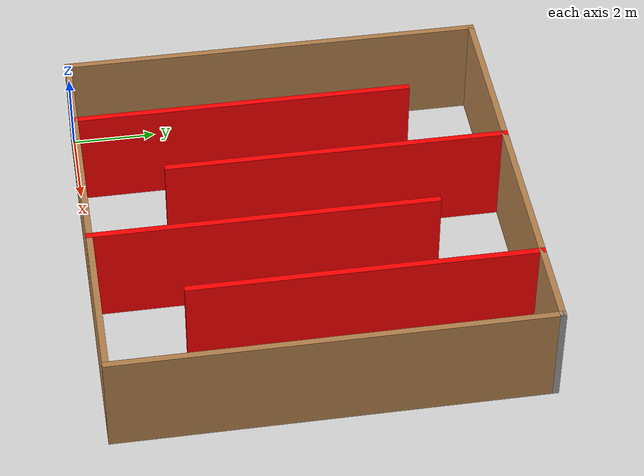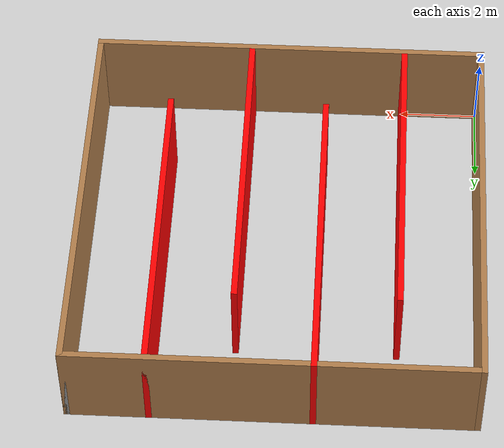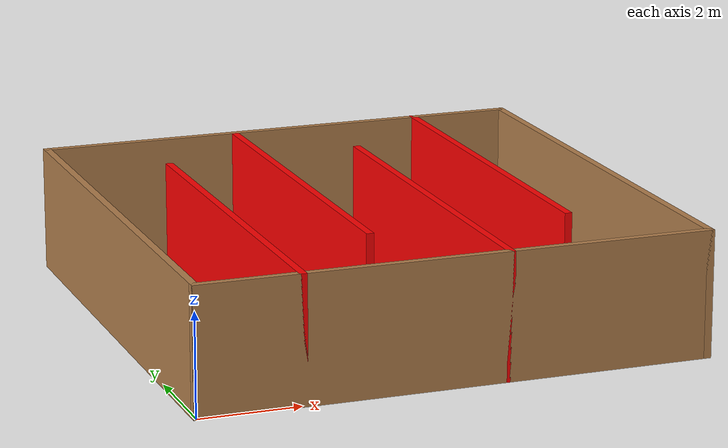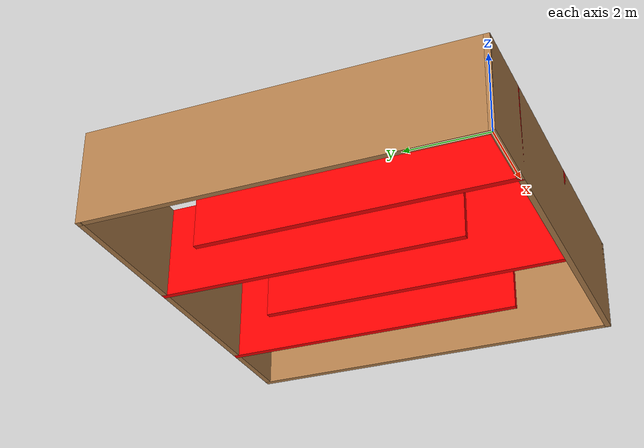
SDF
<?xml version='1.0'?>
<sdf version='1.6'>
  <model name='FlyField'>
    <pose frame=''>5 5 0 0 -0 0</pose>
    <link name='Wall_0'>
      <collision name='Wall_0_Collision'>
        <geometry>
          <box>
            <size>10.15 0.15 2.5</size>
          </box>
        </geometry>
        <pose frame=''>0 0 1.25 0 -0 0</pose>
      </collision>
      <visual name='Wall_0_Visual'>
        <pose frame=''>0 0 1.25 0 -0 0</pose>
        <geometry>
          <box>
            <size>10.15 0.15 2.5</size>
          </box>
        </geometry>
        <material>
          <script>
            <uri>file://media/materials/scripts/gazebo.material</uri>
            <name>Gazebo/Wood</name>
          </script>
          <ambient>0.996078 0.47451 0.0196078 1</ambient>
        </material>
        <meta>
          <layer>0</layer>
        </meta>
      </visual>
      <pose frame=''>0 -5 0 0 -0 0</pose>
    </link>
    <link name='Wall_1'>
      <collision name='Wall_1_Collision'>
        <geometry>
          <box>
            <size>10.15 0.15 2.5</size>
          </box>
        </geometry>
        <pose frame=''>0 0 1.25 0 -0 0</pose>
      </collision>
      <visual name='Wall_1_Visual'>
        <pose frame=''>0 0 1.25 0 -0 0</pose>
        <geometry>
          <box>
            <size>10.15 0.15 2.5</size>
          </box>
        </geometry>
        <material>
          <script>
            <uri>file://media/materials/scripts/gazebo.material</uri>
            <name>Gazebo/Wood</name>
          </script>
          <ambient>0.996078 0.47451 0.0196078 1</ambient>
        </material>
        <meta>
          <layer>0</layer>
        </meta>
      </visual>
      <pose frame=''>5 0 0 0 -0 1.5708</pose>
    </link>
    <link name='Wall_10'>
      <collision name='Wall_10_Collision'>
        <geometry>
          <box>
            <size>8.15 0.15 2.5</size>
          </box>
        </geometry>
        <pose frame=''>0 0 1.25 0 -0 0</pose>
      </collision>
      <visual name='Wall_10_Visual'>
        <pose frame=''>0 0 1.25 0 -0 0</pose>
        <geometry>
          <box>
            <size>8.15 0.15 2.5</size>
          </box>
        </geometry>
        <material>
          <script>
            <uri>file://media/materials/scripts/gazebo.material</uri>
            <name>Gazebo/Grey</name>
          </script>
          <ambient>1 0 0 1</ambient>
        </material>
        <meta>
          <layer>0</layer>
        </meta>
      </visual>
      <pose frame=''>-1 1 0 0 0 -1.5708</pose>
    </link>
    <link name='Wall_13'>
      <collision name='Wall_13_Collision'>
        <geometry>
          <box>
            <size>8.15 0.15 2.5</size>
          </box>
        </geometry>
        <pose frame=''>0 0 1.25 0 -0 0</pose>
      </collision>
      <visual name='Wall_13_Visual'>
        <pose frame=''>0 0 1.25 0 -0 0</pose>
        <geometry>
          <box>
            <size>8.15 0.15 2.5</size>
          </box>
        </geometry>
        <material>
          <script>
            <uri>file://media/materials/scripts/gazebo.material</uri>
            <name>Gazebo/Grey</name>
          </script>
          <ambient>1 0 0 1</ambient>
        </material>
        <meta>
          <layer>0</layer>
        </meta>
      </visual>
      <pose frame=''>1 -1 0 0 -0 1.5708</pose>
    </link>
    <link name='Wall_15'>
      <collision name='Wall_15_Collision'>
        <geometry>
          <box>
            <size>8.15 0.15 2.5</size>
          </box>
        </geometry>
        <pose frame=''>0 0 1.25 0 -0 0</pose>
      </collision>
      <visual name='Wall_15_Visual'>
        <pose frame=''>0 0 1.25 0 -0 0</pose>
        <geometry>
          <box>
            <size>8.15 0.15 2.5</size>
          </box>
        </geometry>
        <material>
          <script>
            <uri>file://media/materials/scripts/gazebo.material</uri>
            <name>Gazebo/Grey</name>
          </script>
          <ambient>1 0 0 1</ambient>
        </material>
        <meta>
          <layer>0</layer>
        </meta>
      </visual>
      <pose frame=''>3 1 0 0 0 -1.5708</pose>
    </link>
    <link name='Wall_2'>
      <collision name='Wall_2_Collision'>
        <geometry>
          <box>
            <size>0.15 0.15 2.5</size>
          </box>
        </geometry>
        <pose frame=''>0 0 1.25 0 -0 0</pose>
      </collision>
      <visual name='Wall_2_Visual'>
        <pose frame=''>0 0 1.25 0 -0 0</pose>
        <geometry>
          <box>
            <size>0.15 0.15 2.5</size>
          </box>
        </geometry>
        <material>
          <script>
            <uri>file://media/materials/scripts/gazebo.material</uri>
            <name>Gazebo/Grey</name>
          </script>
          <ambient>1 1 1 1</ambient>
        </material>
        <meta>
          <layer>0</layer>
        </meta>
      </visual>
      <pose frame=''>5 5 0 0 -0 0</pose>
    </link>
    <link name='Wall_5'>
      <collision name='Wall_5_Collision'>
        <geometry>
          <box>
            <size>10.15 0.15 2.5</size>
          </box>
        </geometry>
        <pose frame=''>0 0 1.25 0 -0 0</pose>
      </collision>
      <visual name='Wall_5_Visual'>
        <pose frame=''>0 0 1.25 0 -0 0</pose>
        <geometry>
          <box>
            <size>10.15 0.15 2.5</size>
          </box>
        </geometry>
        <material>
          <script>
            <uri>file://media/materials/scripts/gazebo.material</uri>
            <name>Gazebo/Wood</name>
          </script>
          <ambient>0.996078 0.47451 0.0196078 1</ambient>
        </material>
        <meta>
          <layer>0</layer>
        </meta>
      </visual>
      <pose frame=''>-5 0 0 0 -0 1.5708</pose>
    </link>
    <link name='Wall_6'>
      <collision name='Wall_6_Collision'>
        <geometry>
          <box>
            <size>10.15 0.15 2.5</size>
          </box>
        </geometry>
        <pose frame=''>0 0 1.25 0 -0 0</pose>
      </collision>
      <visual name='Wall_6_Visual'>
        <pose frame=''>0 0 1.25 0 -0 0</pose>
        <geometry>
          <box>
            <size>10.15 0.15 2.5</size>
          </box>
        </geometry>
        <material>
          <script>
            <uri>file://media/materials/scripts/gazebo.material</uri>
            <name>Gazebo/Wood</name>
          </script>
          <ambient>0.996078 0.47451 0.0196078 1</ambient>
        </material>
        <meta>
          <layer>0</layer>
        </meta>
      </visual>
      <pose frame=''>0 5 0 0 -0 0</pose>
    </link>
    <link name='Wall_8'>
      <collision name='Wall_8_Collision'>
        <geometry>
          <box>
            <size>8.15 0.15 2.5</size>
          </box>
        </geometry>
        <pose frame=''>0 0 1.25 0 -0 0</pose>
      </collision>
      <visual name='Wall_8_Visual'>
        <pose frame=''>0 0 1.25 0 -0 0</pose>
        <geometry>
          <box>
            <size>8.15 0.15 2.5</size>
          </box>
        </geometry>
        <material>
          <script>
            <uri>file://media/materials/scripts/gazebo.material</uri>
            <name>Gazebo/Grey</name>
          </script>
          <ambient>1 0 0 1</ambient>
        </material>
        <meta>
          <layer>0</layer>
        </meta>
      </visual>
      <pose frame=''>-3 -1 0 0 0 -1.5708</pose>
    </link>
    <static>1</static>
  </model>
</sdf>
